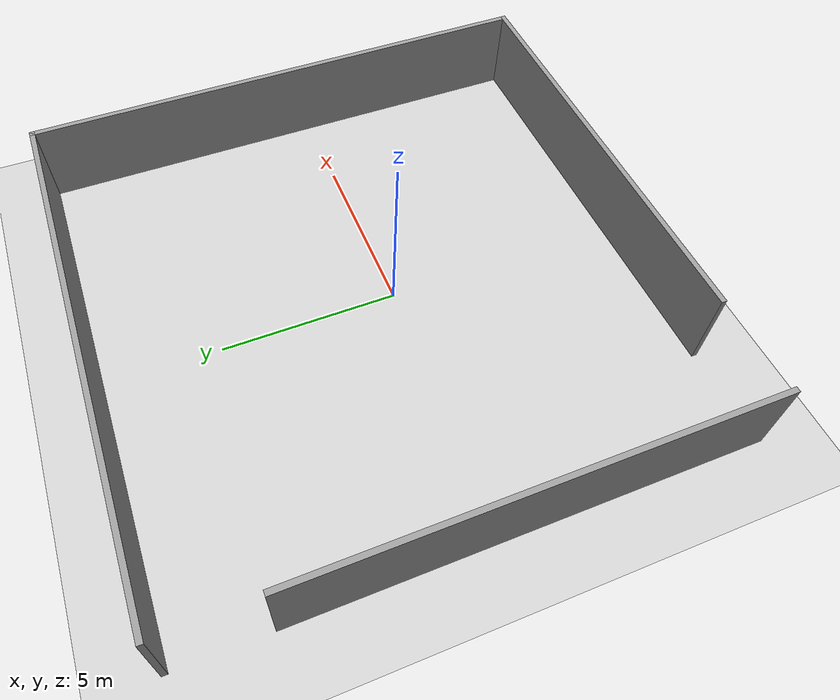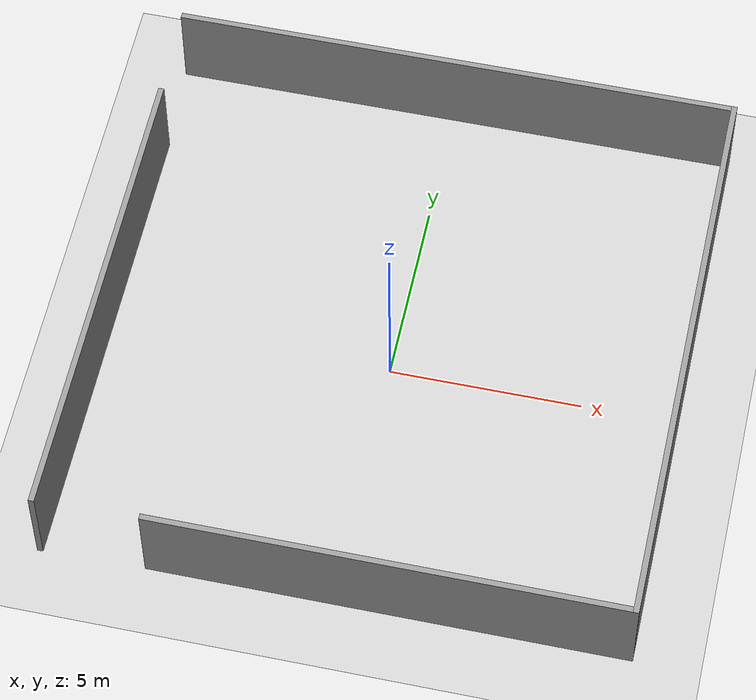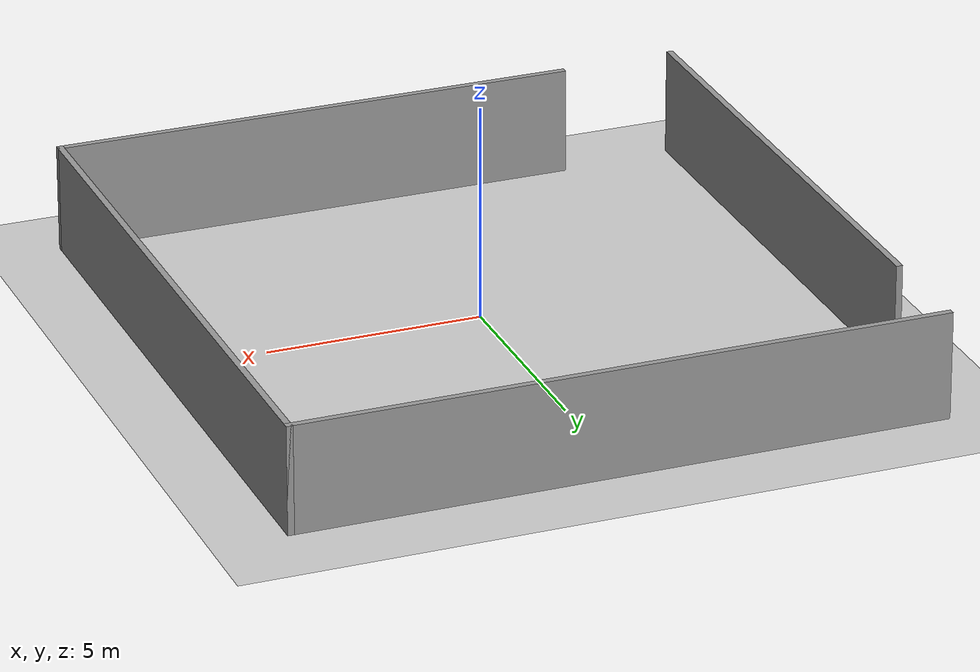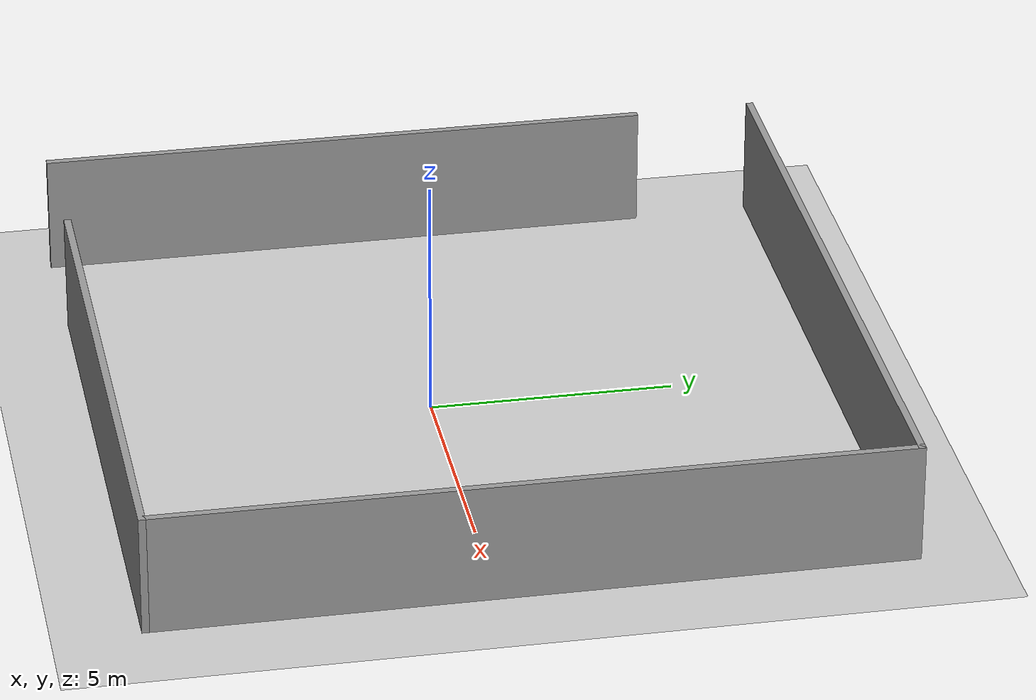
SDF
<?xml version="1.0"?>
<sdf version="1.4">
    <world name="default">
        <!-- A ground plane -->
        <include>
            <uri>model://ground_plane</uri>
        </include>

         <!-- A light source -->
        <include>
            <uri>model://sun</uri>
        </include>

        <!-- Custom world -->
        <include>
            <uri>model://task1_floor</uri>
        </include>
    </world>
</sdf>

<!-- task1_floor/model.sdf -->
<sdf version='1.6'>
  <model name='task1_floor'>
    <pose frame=''>0.015487 0.707671 0 0 -0 0</pose>
    <link name='Wall_0'>
      <collision name='Wall_0_Collision'>
        <geometry>
          <box>
            <size>15 0.15 2.5</size>
          </box>
        </geometry>
        <pose frame=''>0 0 1.25 0 -0 0</pose>
      </collision>
      <visual name='Wall_0_Visual'>
        <pose frame=''>0 0 1.25 0 -0 0</pose>
        <geometry>
          <box>
            <size>15 0.15 2.5</size>
          </box>
        </geometry>
        <material>
          <script>
            <uri>file://media/materials/scripts/gazebo.material</uri>
            <name>Gazebo/Grey</name>
          </script>
          <ambient>1 1 1 1</ambient>
        </material>
        <meta>
          <layer>0</layer>
        </meta>
      </visual>
      <pose frame=''>-0 7.58 0 0 -0 0</pose>
    </link>
    <link name='Wall_1'>
      <collision name='Wall_1_Collision'>
        <geometry>
          <box>
            <size>15.25 0.15 2.5</size>
          </box>
        </geometry>
        <pose frame=''>0 0 1.25 0 -0 0</pose>
      </collision>
      <visual name='Wall_1_Visual'>
        <pose frame=''>0 0 1.25 0 -0 0</pose>
        <geometry>
          <box>
            <size>15.25 0.15 2.5</size>
          </box>
        </geometry>
        <material>
          <script>
            <uri>file://media/materials/scripts/gazebo.material</uri>
            <name>Gazebo/Grey</name>
          </script>
          <ambient>1 1 1 1</ambient>
        </material>
        <meta>
          <layer>0</layer>
        </meta>
      </visual>
      <pose frame=''>7.425 0.03 0 0 -0 -1.5708</pose>
    </link>
    <link name='Wall_2'>
      <collision name='Wall_2_Collision'>
        <geometry>
          <box>
            <size>12.25 0.15 2.5</size>
          </box>
        </geometry>
        <pose frame=''>0 0 1.25 0 -0 0</pose>
      </collision>
      <visual name='Wall_2_Visual'>
        <pose frame=''>0 0 1.25 0 -0 0</pose>
        <geometry>
          <box>
            <size>12.25 0.15 2.5</size>
          </box>
        </geometry>
        <material>
          <script>
            <uri>file://media/materials/scripts/gazebo.material</uri>
            <name>Gazebo/Grey</name>
          </script>
          <ambient>1 1 1 1</ambient>
        </material>
        <meta>
          <layer>0</layer>
        </meta>
      </visual>
      <pose frame=''>1.375 -7.52 0 0 -0 3.14159</pose>
    </link>
    <link name='Wall_4'>
      <collision name='Wall_4_Collision'>
        <geometry>
          <box>
            <size>12.75 0.15 2.5</size>
          </box>
        </geometry>
        <pose frame=''>0 0 1.25 0 -0 0</pose>
      </collision>
      <visual name='Wall_4_Visual'>
        <pose frame=''>0 0 1.25 0 -0 0</pose>
        <geometry>
          <box>
            <size>12.75 0.15 2.5</size>
          </box>
        </geometry>
        <material>
          <script>
            <uri>file://media/materials/scripts/gazebo.material</uri>
            <name>Gazebo/Grey</name>
          </script>
          <ambient>1 1 1 1</ambient>
        </material>
        <meta>
          <layer>0</layer>
        </meta>
      </visual>
      <pose frame=''>-7.425 -1.28 0 0 -0 1.5708</pose>
    </link>
    <static>1</static>
  </model>
</sdf>
